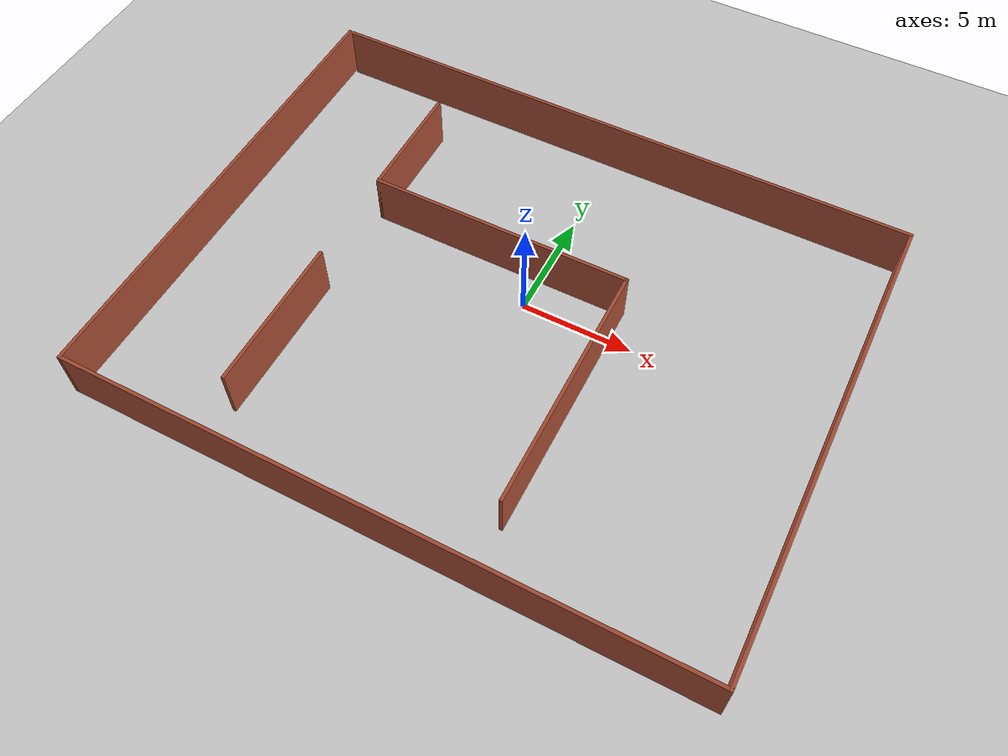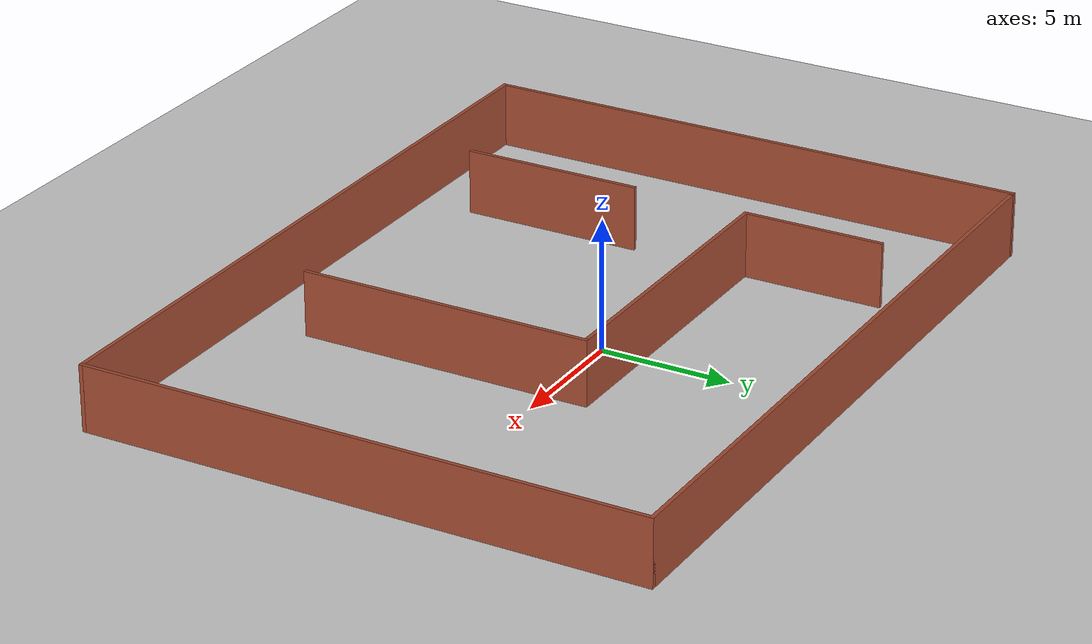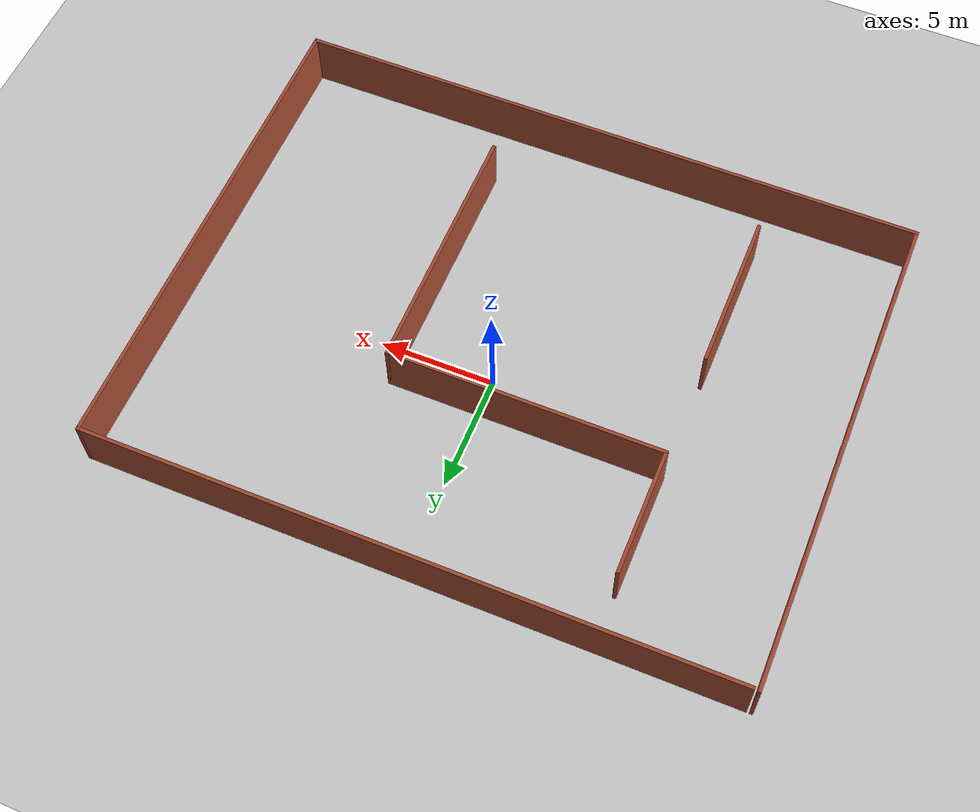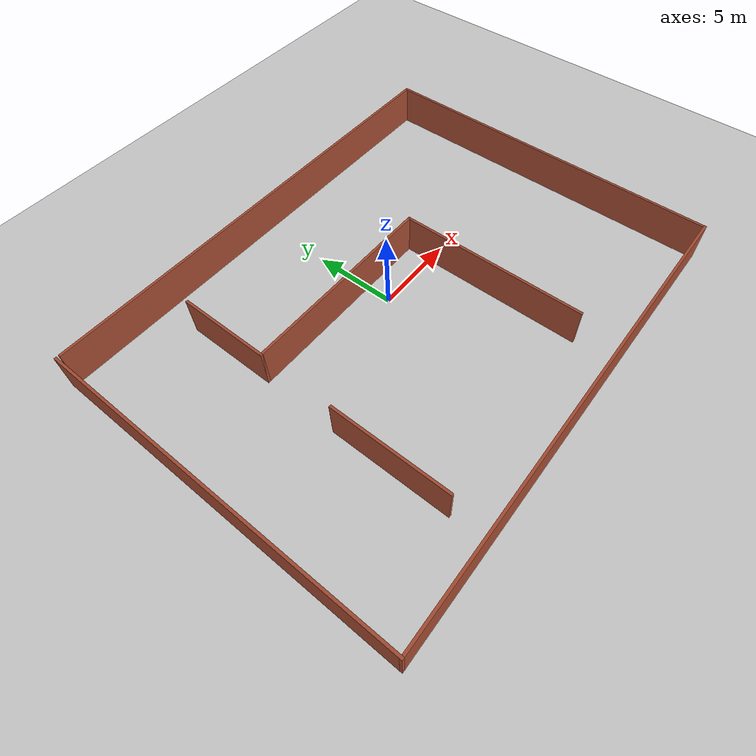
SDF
<sdf version="1.6">
 <world name="default">
  <plugin name="ros_interface_plugin" filename="librotors_gazebo_ros_interface_plugin.so"/>
  <light name="sun" type="directional">
   <pose>0 0 10 0 -0 0</pose>
   <diffuse>0.8 0.8 0.8 1</diffuse>
   <specular>0.2 0.2 0.2 1</specular>
   <attenuation>
    <range>1000</range>
    <constant>0.9</constant>
    <linear>0.01</linear>
    <quadratic>0.001</quadratic>
   </attenuation>
   <direction>-0.5 0.1 -0.9</direction>
  </light>
  <model name="ground_plane">
   <static>1</static>
   <link name="link">
    <collision name="collision">
     <geometry><plane><normal>0 0 1</normal><size>100 100</size></plane></geometry>
     <surface><friction><ode><mu>100</mu><mu2>50</mu2></ode></friction></surface>
    </collision>
    <visual name="visual">
     <cast_shadows>0</cast_shadows>
     <geometry><plane><normal>0 0 1</normal><size>100 100</size></plane></geometry>
     <material>
      <script><uri>file://media/materials/scripts/gazebo.material</uri><name>Gazebo/Grey</name></script>
     </material>
    </visual>
   </link>
  </model>
  <gravity>0 0 -9.8</gravity>
  <magnetic_field>6e-06 2.3e-05 -4.2e-05</magnetic_field>
  <atmosphere type="adiabatic"/>
  <physics name="default_physics" default="0" type="ode">
   <max_step_size>0.001</max_step_size>
   <real_time_factor>1</real_time_factor>
   <real_time_update_rate>1000</real_time_update_rate>
  </physics>
  <scene><ambient>0.4 0.4 0.4 1</ambient><background>0.7 0.7 0.7 1</background><shadows>1</shadows></scene>
  <audio><device>default</device></audio>
  <spherical_coordinates>
   <surface_model>EARTH_WGS84</surface_model>
   <latitude_deg>0</latitude_deg>
   <longitude_deg>0</longitude_deg>
   <elevation>0</elevation>
   <heading_deg>0</heading_deg>
  </spherical_coordinates>
  <model name="walls">
   <pose>-0.280119 -1.42578 0 0 -0 0</pose>
   <link name="Wall_10">
    <collision name="Wall_10_Collision">
     <geometry><box><size>7 0.15 2.5</size></box></geometry>
     <pose>0 0 1.25 0 -0 0</pose>
    </collision>
    <visual name="Wall_10_Visual">
     <pose>0 0 1.25 0 -0 0</pose>
     <geometry><box><size>7 0.15 2.5</size></box></geometry>
     <material>
      <script><uri>file://media/materials/scripts/gazebo.material</uri><name>Gazebo/Bricks</name></script>
      <ambient>1 1 1 1</ambient>
     </material>
     <meta><layer>0</layer></meta>
    </visual>
    <pose>-7.70023 -5.05558 0 0 -0 -1.5708</pose>
   </link>
   <link name="Wall_12">
    <collision name="Wall_12_Collision">
     <geometry><box><size>12 0.15 2.5</size></box></geometry>
     <pose>0 0 1.25 0 -0 0</pose>
    </collision>
    <visual name="Wall_12_Visual">
     <pose>0 0 1.25 0 -0 0</pose>
     <geometry><box><size>12 0.15 2.5</size></box></geometry>
     <material>
      <script><uri>file://media/materials/scripts/gazebo.material</uri><name>Gazebo/Bricks</name></script>
      <ambient>1 1 1 1</ambient>
     </material>
     <meta><layer>0</layer></meta>
    </visual>
    <pose>-1.72173 2.97089 0 0 -0 0</pose>
   </link>
   <link name="Wall_13">
    <collision name="Wall_13_Collision">
     <geometry><box><size>11.25 0.15 2.5</size></box></geometry>
     <pose>0 0 1.25 0 -0 0</pose>
    </collision>
    <visual name="Wall_13_Visual">
     <pose>0 0 1.25 0 -0 0</pose>
     <geometry><box><size>11.25 0.15 2.5</size></box></geometry>
     <material>
      <script><uri>file://media/materials/scripts/gazebo.material</uri><name>Gazebo/Bricks</name></script>
      <ambient>1 1 1 1</ambient>
     </material>
     <meta><layer>0</layer></meta>
    </visual>
    <pose>4.20327 -2.57911 0 0 -0 -1.5708</pose>
   </link>
   <link name="Wall_3">
    <collision name="Wall_3_Collision">
     <geometry><box><size>27.75 0.15 2.5</size></box></geometry>
     <pose>0 0 1.25 0 -0 0</pose>
    </collision>
    <visual name="Wall_3_Visual">
     <pose>0 0 1.25 0 -0 0</pose>
     <geometry><box><size>27.75 0.15 2.5</size></box></geometry>
     <material>
      <script><uri>file://media/materials/scripts/gazebo.material</uri><name>Gazebo/Bricks</name></script>
      <ambient>1 1 1 1</ambient>
     </material>
     <meta><layer>0</layer></meta>
    </visual>
    <pose>0.125 10.675 0 0 -0 0</pose>
   </link>
   <link name="Wall_4">
    <collision name="Wall_4_Collision">
     <geometry><box><size>21.5 0.15 2.5</size></box></geometry>
     <pose>0 0 1.25 0 -0 0</pose>
    </collision>
    <visual name="Wall_4_Visual">
     <pose>0 0 1.25 0 -0 0</pose>
     <geometry><box><size>21.5 0.15 2.5</size></box></geometry>
     <material>
      <script><uri>file://media/materials/scripts/gazebo.material</uri><name>Gazebo/Bricks</name></script>
      <ambient>1 1 1 1</ambient>
     </material>
     <meta><layer>0</layer></meta>
    </visual>
    <pose>13.925 -0 0 0 -0 -1.5708</pose>
   </link>
   <link name="Wall_5">
    <collision name="Wall_5_Collision">
     <geometry><box><size>28 0.15 2.5</size></box></geometry>
     <pose>0 0 1.25 0 -0 0</pose>
    </collision>
    <visual name="Wall_5_Visual">
     <pose>0 0 1.25 0 -0 0</pose>
     <geometry><box><size>28 0.15 2.5</size></box></geometry>
     <material>
      <script><uri>file://media/materials/scripts/gazebo.material</uri><name>Gazebo/Bricks</name></script>
      <ambient>1 1 1 1</ambient>
     </material>
     <meta><layer>0</layer></meta>
    </visual>
    <pose>-0 -10.675 0 0 -0 3.14159</pose>
   </link>
   <link name="Wall_6">
    <collision name="Wall_6_Collision">
     <geometry><box><size>21.5 0.15 2.5</size></box></geometry>
     <pose>0 0 1.25 0 -0 0</pose>
    </collision>
    <visual name="Wall_6_Visual">
     <pose>0 0 1.25 0 -0 0</pose>
     <geometry><box><size>21.5 0.15 2.5</size></box></geometry>
     <material>
      <script><uri>file://media/materials/scripts/gazebo.material</uri><name>Gazebo/Bricks</name></script>
      <ambient>1 1 1 1</ambient>
     </material>
     <meta><layer>0</layer></meta>
    </visual>
    <pose>-13.925 -0 0 0 -0 1.5708</pose>
   </link>
   <link name="Wall_8">
    <collision name="Wall_8_Collision">
     <geometry><box><size>5.5 0.15 2.5</size></box></geometry>
     <pose>0 0 1.25 0 -0 0</pose>
    </collision>
    <visual name="Wall_8_Visual">
     <pose>0 0 1.25 0 -0 0</pose>
     <geometry><box><size>5.5 0.15 2.5</size></box></geometry>
     <material>
      <script><uri>file://media/materials/scripts/gazebo.material</uri><name>Gazebo/Bricks</name></script>
      <ambient>1 1 1 1</ambient>
     </material>
     <meta><layer>0</layer></meta>
    </visual>
    <pose>-7.64673 5.64589 0 0 -0 -1.5708</pose>
   </link>
   <static>1</static>
  </model>
 </world>
</sdf>
